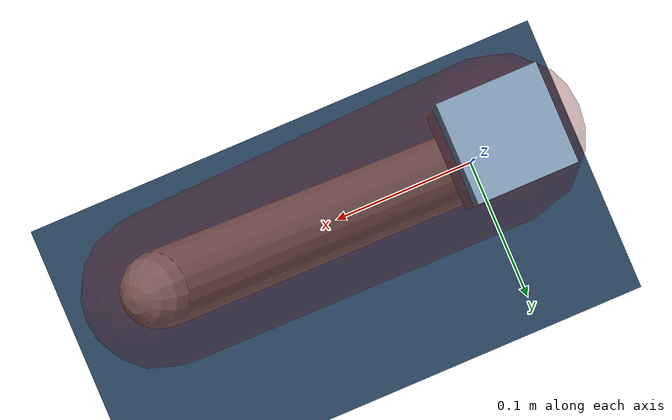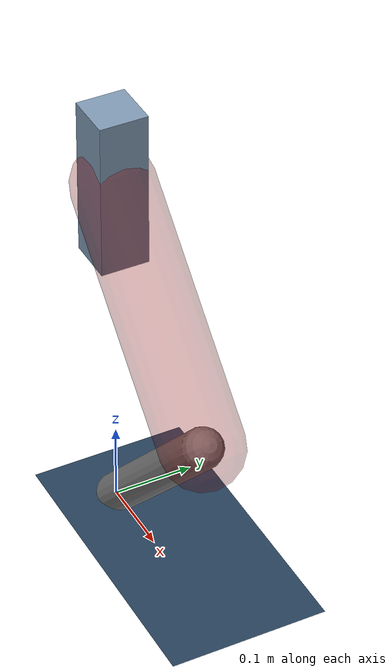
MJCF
<mujoco model="Hopper2D">
	<compiler inertiafromgeom="true" angle="radian" />
	<option timestep="0.001" integrator="implicit" cone="elliptic" solver="Newton" tolerance="1e-10" />

	<default>
		<geom contype="1" conaffinity="1" condim="3" friction="2 0.005 0.0001" solref="0.005 1" />
		<joint limited="true" damping="0.1" />
	</default>

	<asset>
		<texture name="skybox" type="skybox" builtin="gradient" rgb1=".4 .6 .8" rgb2="0 0 0" width="800" height="800" />
		<texture name="grid" type="2d" builtin="checker" rgb1=".1 .2 .3" rgb2=".2 .3 .4" width="300" height="300" mark="edge" markrgb=".2 .3 .4" />
		<material name="ground" texture="grid" texrepeat="1 1" texuniform="true" reflectance="0.1" />
		<material name="leg" rgba="0.5 0.6 0.7 1" />
	</asset>

	<worldbody>

		<geom name="floor" type="plane" size="5 5 0.25" material="ground" />

		<light directional="false" diffuse="0.8 0.8 0.8" specular="0.3 0.3 0.3" pos="0 0 2" dir="0 0 -1" />
		<light mode="targetbodycom" target="base" directional="false" diffuse="0.8 0.8 0.8" specular="0.3 0.3 0.3" pos="0 0 2" dir="0 0 -1" />

		<camera name="fixed" pos="0 -2 1" xyaxes="1 0 0 0 0 1" />
		<camera name="tracking" mode="trackcom" pos="0 -3 1" />

		<body name="root" pos="0 0 0.4640204658372258">
			<joint name="slide_x" type="slide" axis="1 0 0" range="-100 100" />
			<joint name="slide_z" type="slide" axis="0 0 1" range="0 10" />

			<body name="base" pos="0 0 0">
				<geom name="torso" type="box" size="0.03 0.03 0.1" mass="2.003" material="leg" />

				<body name="link1" pos="0 0 0" euler="0 0.7838705855040436 0">
					<joint type="hinge" axis="0 -1 0" pos="0 0 0" name="hinge1" limited="true" range="-3.14 3.14" stiffness="0" damping="0.1" />
					<geom name="thigh" type="capsule" fromto="0 0 0 0.3137551065805674 0 0" size="0.05" rgba="0.5 0 0 0.3" mass="1.0261387877675319" />

					<body name="link2" pos="0.3137551065805674 0 0" euler="0 1.5286582591170548 0">
						<joint type="hinge" axis="0 -1 0" pos="0 0 0" name="hinge2" limited="true" range="-3.14 3.14" stiffness="0" damping="0.1" />
						<geom name="shank" type="capsule" fromto="0 0 0 0.32890481289179635 0 0" size="0.025" mass="0.5069238503134371" />

					</body>
				</body>
			</body>
		</body>
	</worldbody>

	<actuator>
		<motor name="torque1" joint="hinge1" ctrlrange="-19.15427134132558 19.15427134132558" ctrllimited="true" gear="1" />
		<motor name="torque2" joint="hinge2" ctrlrange="-79.54226059278048 79.54226059278048" ctrllimited="true" gear="1" />
	</actuator>
</mujoco>
